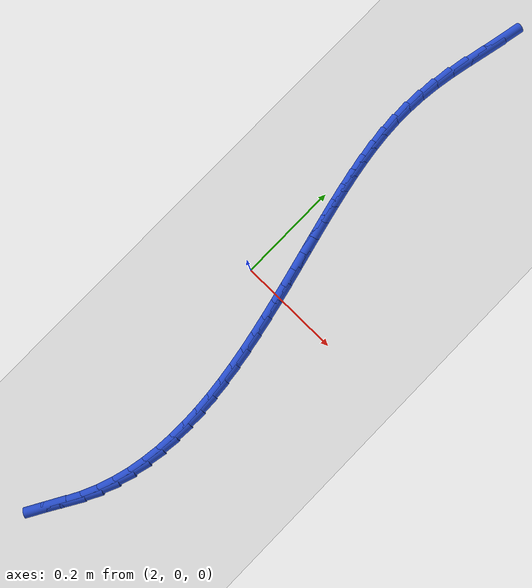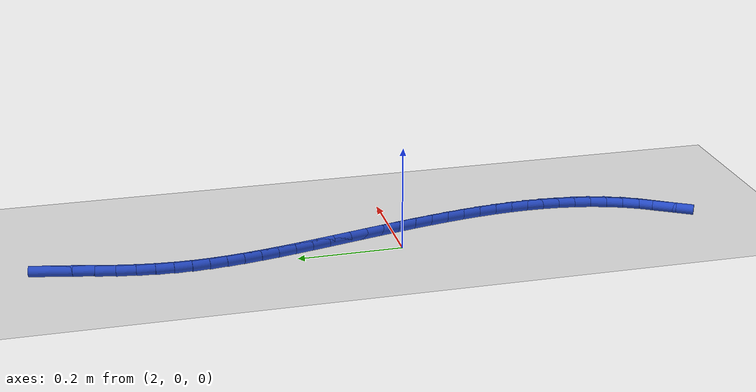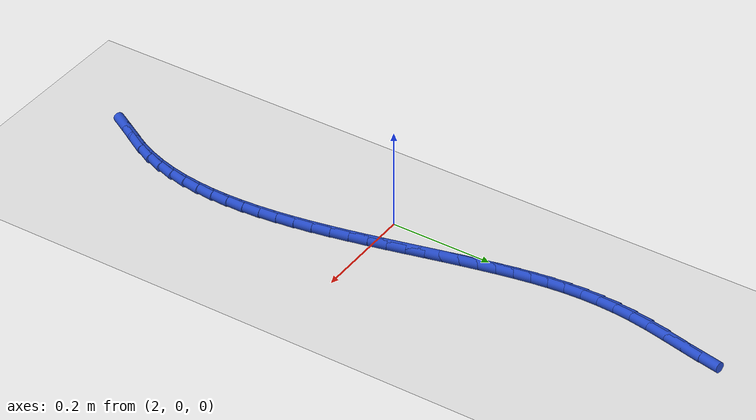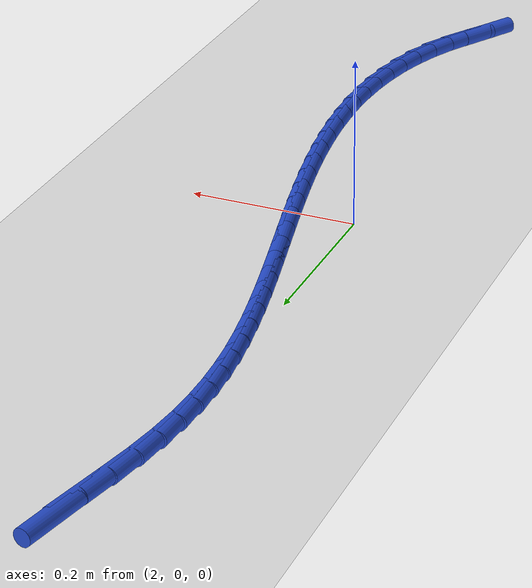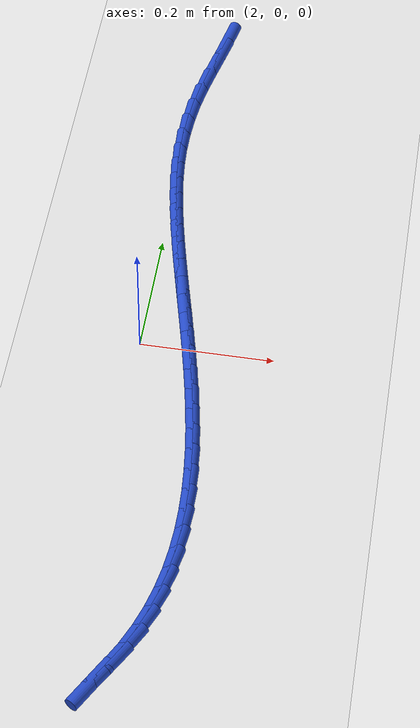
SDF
<sdf version="1.6">
 <world name="default">
  <model name="ground_plane">
   <static>1</static>
   <link name="link">
    <collision name="collision">
     <geometry><plane><normal>0 0 1</normal><size>100 100</size></plane></geometry>
     <surface><friction><ode><mu>100</mu><mu2>50</mu2></ode></friction></surface>
    </collision>
    <visual name="visual">
     <cast_shadows>0</cast_shadows>
     <geometry><plane><normal>0 0 1</normal><size>100 100</size></plane></geometry>
     <material>
      <script><uri>file://media/materials/scripts/gazebo.material</uri><name>Gazebo/WhiteGlow</name></script>
     </material>
    </visual>
   </link>
  </model>
  <model name="line">
   <link name="link_91">
    <pose>2.034192431935909 0.647462435993912 0.01 0 1.57 1.369621810823001</pose>
    <collision name="collision">
     <geometry><cylinder><radius>0.01</radius><length>0.08</length></cylinder></geometry>
    </collision>
    <visual name="visual">
     <material>
      <script><name>Gazebo/Blue</name><uri>file://media/materials/scripts/gazebo.material</uri></script>
     </material>
     <geometry><cylinder><radius>0.01</radius><length>0.08</length></cylinder></geometry>
    </visual>
   </link>
   <link name="link_92">
    <pose>2.0263084687549178 0.6088028806750904 0.01 0 1.57 1.3491373355631433</pose>
    <collision name="collision">
     <geometry><cylinder><radius>0.01</radius><length>0.08</length></cylinder></geometry>
    </collision>
    <visual name="visual">
     <material>
      <script><name>Gazebo/Blue</name><uri>file://media/materials/scripts/gazebo.material</uri></script>
     </material>
     <geometry><cylinder><radius>0.01</radius><length>0.08</length></cylinder></geometry>
    </visual>
   </link>
   <link name="link_93">
    <pose>2.017439910984816 0.5694503856099626 0.01 0 1.57 1.3611968601958053</pose>
    <collision name="collision">
     <geometry><cylinder><radius>0.01</radius><length>0.08</length></cylinder></geometry>
    </collision>
    <visual name="visual">
     <material>
      <script><name>Gazebo/Blue</name><uri>file://media/materials/scripts/gazebo.material</uri></script>
     </material>
     <geometry><cylinder><radius>0.01</radius><length>0.08</length></cylinder></geometry>
    </visual>
   </link>
   <link name="link_94">
    <pose>2.0091796039426857 0.530619239491133 0.01 0 1.57 1.4046973163205203</pose>
    <collision name="collision">
     <geometry><cylinder><radius>0.01</radius><length>0.08</length></cylinder></geometry>
    </collision>
    <visual name="visual">
     <material>
      <script><name>Gazebo/Blue</name><uri>file://media/materials/scripts/gazebo.material</uri></script>
     </material>
     <geometry><cylinder><radius>0.01</radius><length>0.08</length></cylinder></geometry>
    </visual>
   </link>
   <link name="link_95">
    <pose>2.002934327454093 0.49336593400475687 0.01 0 1.57 1.4594379807479152</pose>
    <collision name="collision">
     <geometry><cylinder><radius>0.01</radius><length>0.08</length></cylinder></geometry>
    </collision>
    <visual name="visual">
     <material>
      <script><name>Gazebo/Blue</name><uri>file://media/materials/scripts/gazebo.material</uri></script>
     </material>
     <geometry><cylinder><radius>0.01</radius><length>0.08</length></cylinder></geometry>
    </visual>
   </link>
   <link name="link_96">
    <pose>1.9989534402225504 0.45776538393752514 0.01 0 1.57 1.5150441563992707</pose>
    <collision name="collision">
     <geometry><cylinder><radius>0.01</radius><length>0.08</length></cylinder></geometry>
    </collision>
    <visual name="visual">
     <material>
      <script><name>Gazebo/Blue</name><uri>file://media/materials/scripts/gazebo.material</uri></script>
     </material>
     <geometry><cylinder><radius>0.01</radius><length>0.08</length></cylinder></geometry>
    </visual>
   </link>
   <link name="link_97">
    <pose>1.9970419636574017 0.4235156738842333 0.01 0 1.57 1.569652973487827</pose>
    <collision name="collision">
     <geometry><cylinder><radius>0.01</radius><length>0.08</length></cylinder></geometry>
    </collision>
    <visual name="visual">
     <material>
      <script><name>Gazebo/Blue</name><uri>file://media/materials/scripts/gazebo.material</uri></script>
     </material>
     <geometry><cylinder><radius>0.01</radius><length>0.08</length></cylinder></geometry>
    </visual>
   </link>
   <link name="link_98">
    <pose>1.9970040025242044 0.39031411105938885 0.01 0 1.57 -1.5203199644983347</pose>
    <collision name="collision">
     <geometry><cylinder><radius>0.01</radius><length>0.08</length></cylinder></geometry>
    </collision>
    <visual name="visual">
     <material>
      <script><name>Gazebo/Blue</name><uri>file://media/materials/scripts/gazebo.material</uri></script>
     </material>
     <geometry><cylinder><radius>0.01</radius><length>0.08</length></cylinder></geometry>
    </visual>
   </link>
   <link name="link_99">
    <pose>1.9986436615885195 0.35785800267750156 0.01 0 1.57 -1.4736009699625172</pose>
    <collision name="collision">
     <geometry><cylinder><radius>0.01</radius><length>0.08</length></cylinder></geometry>
    </collision>
    <visual name="visual">
     <material>
      <script><name>Gazebo/Blue</name><uri>file://media/materials/scripts/gazebo.material</uri></script>
     </material>
     <geometry><cylinder><radius>0.01</radius><length>0.08</length></cylinder></geometry>
    </visual>
   </link>
   <link name="link_100">
    <pose>2.001765045615904 0.3258446559530786 0.01 0 1.57 -1.4333945867012488</pose>
    <collision name="collision">
     <geometry><cylinder><radius>0.01</radius><length>0.08</length></cylinder></geometry>
    </collision>
    <visual name="visual">
     <material>
      <script><name>Gazebo/Blue</name><uri>file://media/materials/scripts/gazebo.material</uri></script>
     </material>
     <geometry><cylinder><radius>0.01</radius><length>0.08</length></cylinder></geometry>
    </visual>
   </link>
   <link name="link_101">
    <pose>2.006172259371917 0.2939713781006293 0.01 0 1.57 -1.4008579663216219</pose>
    <collision name="collision">
     <geometry><cylinder><radius>0.01</radius><length>0.08</length></cylinder></geometry>
    </collision>
    <visual name="visual">
     <material>
      <script><name>Gazebo/Blue</name><uri>file://media/materials/scripts/gazebo.material</uri></script>
     </material>
     <geometry><cylinder><radius>0.01</radius><length>0.08</length></cylinder></geometry>
    </visual>
   </link>
   <link name="link_102">
    <pose>2.0116694076221173 0.2619354763346612 0.01 0 1.57 -1.3764016894868856</pose>
    <collision name="collision">
     <geometry><cylinder><radius>0.01</radius><length>0.08</length></cylinder></geometry>
    </collision>
    <visual name="visual">
     <material>
      <script><name>Gazebo/Blue</name><uri>file://media/materials/scripts/gazebo.material</uri></script>
     </material>
     <geometry><cylinder><radius>0.01</radius><length>0.08</length></cylinder></geometry>
    </visual>
   </link>
   <link name="link_103">
    <pose>2.0180634113165494 0.22945897104831045 0.01 0 1.57 -1.3580558327134773</pose>
    <collision name="collision">
     <geometry><cylinder><radius>0.01</radius><length>0.08</length></cylinder></geometry>
    </collision>
    <visual name="visual">
     <material>
      <script><name>Gazebo/Blue</name><uri>file://media/materials/scripts/gazebo.material</uri></script>
     </material>
     <geometry><cylinder><radius>0.01</radius><length>0.08</length></cylinder></geometry>
    </visual>
   </link>
   <link name="link_104">
    <pose>2.025186285521889 0.1964840938424098 0.01 0 1.57 -1.3444044065319745</pose>
    <collision name="collision">
     <geometry><cylinder><radius>0.01</radius><length>0.08</length></cylinder></geometry>
    </collision>
    <visual name="visual">
     <material>
      <script><name>Gazebo/Blue</name><uri>file://media/materials/scripts/gazebo.material</uri></script>
     </material>
     <geometry><cylinder><radius>0.01</radius><length>0.08</length></cylinder></geometry>
    </visual>
   </link>
   <link name="link_105">
    <pose>2.032883217413384 0.1630686669950787 0.01 0 1.57 -1.3351119735946761</pose>
    <collision name="collision">
     <geometry><cylinder><radius>0.01</radius><length>0.08</length></cylinder></geometry>
    </collision>
    <visual name="visual">
     <material>
      <script><name>Gazebo/Blue</name><uri>file://media/materials/scripts/gazebo.material</uri></script>
     </material>
     <geometry><cylinder><radius>0.01</radius><length>0.08</length></cylinder></geometry>
    </visual>
   </link>
   <link name="link_106">
    <pose>2.040999510753928 0.12927153588902984 0.01 0 1.57 -1.329933006942439</pose>
    <collision name="collision">
     <geometry><cylinder><radius>0.01</radius><length>0.08</length></cylinder></geometry>
    </collision>
    <visual name="visual">
     <material>
      <script><name>Gazebo/Blue</name><uri>file://media/materials/scripts/gazebo.material</uri></script>
     </material>
     <geometry><cylinder><radius>0.01</radius><length>0.08</length></cylinder></geometry>
    </visual>
   </link>
   <link name="link_107">
    <pose>2.0493804693064144 0.0951515459069779 0.01 0 1.57 -1.328695846292243</pose>
    <collision name="collision">
     <geometry><cylinder><radius>0.01</radius><length>0.08</length></cylinder></geometry>
    </collision>
    <visual name="visual">
     <material>
      <script><name>Gazebo/Blue</name><uri>file://media/materials/scripts/gazebo.material</uri></script>
     </material>
     <geometry><cylinder><radius>0.01</radius><length>0.08</length></cylinder></geometry>
    </visual>
   </link>
   <link name="link_108">
    <pose>2.057871396833738 0.060767542431635596 0.01 0 1.57 -1.331296864348369</pose>
    <collision name="collision">
     <geometry><cylinder><radius>0.01</radius><length>0.08</length></cylinder></geometry>
    </collision>
    <visual name="visual">
     <material>
      <script><name>Gazebo/Blue</name><uri>file://media/materials/scripts/gazebo.material</uri></script>
     </material>
     <geometry><cylinder><radius>0.01</radius><length>0.08</length></cylinder></geometry>
    </visual>
   </link>
   <link name="link_109">
    <pose>2.066317597098791 0.026178370845717478 0.01 0 1.57 -1.337695643323315</pose>
    <collision name="collision">
     <geometry><cylinder><radius>0.01</radius><length>0.08</length></cylinder></geometry>
    </collision>
    <visual name="visual">
     <material>
      <script><name>Gazebo/Blue</name><uri>file://media/materials/scripts/gazebo.material</uri></script>
     </material>
     <geometry><cylinder><radius>0.01</radius><length>0.08</length></cylinder></geometry>
    </visual>
   </link>
   <link name="link_110">
    <pose>2.074564373864468 -0.008557123468063586 0.01 0 1.57 -1.3479111136011148</pose>
    <collision name="collision">
     <geometry><cylinder><radius>0.01</radius><length>0.08</length></cylinder></geometry>
    </collision>
    <visual name="visual">
     <material>
      <script><name>Gazebo/Blue</name><uri>file://media/materials/scripts/gazebo.material</uri></script>
     </material>
     <geometry><cylinder><radius>0.01</radius><length>0.08</length></cylinder></geometry>
    </visual>
   </link>
   <link name="link_111">
    <pose>2.082457030893661 -0.04338009512699312 0.01 0 1.57 -1.3620184106205921</pose>
    <collision name="collision">
     <geometry><cylinder><radius>0.01</radius><length>0.08</length></cylinder></geometry>
    </collision>
    <visual name="visual">
     <material>
      <script><name>Gazebo/Blue</name><uri>file://media/materials/scripts/gazebo.material</uri></script>
     </material>
     <geometry><cylinder><radius>0.01</radius><length>0.08</length></cylinder></geometry>
    </visual>
   </link>
   <link name="link_112">
    <pose>2.089840871949266 -0.07823169874835789 0.01 0 1.57 -1.3801460294883323</pose>
    <collision name="collision">
     <geometry><cylinder><radius>0.01</radius><length>0.08</length></cylinder></geometry>
    </collision>
    <visual name="visual">
     <material>
      <script><name>Gazebo/Blue</name><uri>file://media/materials/scripts/gazebo.material</uri></script>
     </material>
     <geometry><cylinder><radius>0.01</radius><length>0.08</length></cylinder></geometry>
    </visual>
   </link>
   <link name="link_113">
    <pose>2.0965612007941754 -0.11305308894944414 0.01 0 1.57 -1.4024726561330687</pose>
    <collision name="collision">
     <geometry><cylinder><radius>0.01</radius><length>0.08</length></cylinder></geometry>
    </collision>
    <visual name="visual">
     <material>
      <script><name>Gazebo/Blue</name><uri>file://media/materials/scripts/gazebo.material</uri></script>
     </material>
     <geometry><cylinder><radius>0.01</radius><length>0.08</length></cylinder></geometry>
    </visual>
   </link>
   <link name="link_114">
    <pose>2.1024633211912818 -0.14778542034753903 0.01 0 1.57 -1.429222797239299</pose>
    <collision name="collision">
     <geometry><cylinder><radius>0.01</radius><length>0.08</length></cylinder></geometry>
    </collision>
    <visual name="visual">
     <material>
      <script><name>Gazebo/Blue</name><uri>file://media/materials/scripts/gazebo.material</uri></script>
     </material>
     <geometry><cylinder><radius>0.01</radius><length>0.08</length></cylinder></geometry>
    </visual>
   </link>
   <link name="link_115">
    <pose>2.1073925369034807 -0.18236984755992733 0.01 0 1.57 -1.4606600000841559</pose>
    <collision name="collision">
     <geometry><cylinder><radius>0.01</radius><length>0.08</length></cylinder></geometry>
    </collision>
    <visual name="visual">
     <material>
      <script><name>Gazebo/Blue</name><uri>file://media/materials/scripts/gazebo.material</uri></script>
     </material>
     <geometry><cylinder><radius>0.01</radius><length>0.08</length></cylinder></geometry>
    </visual>
   </link>
   <link name="link_116">
    <pose>2.111194151693664 -0.21674752520389612 0.01 0 1.57 -1.4970760528010938</pose>
    <collision name="collision">
     <geometry><cylinder><radius>0.01</radius><length>0.08</length></cylinder></geometry>
    </collision>
    <visual name="visual">
     <material>
      <script><name>Gazebo/Blue</name><uri>file://media/materials/scripts/gazebo.material</uri></script>
     </material>
     <geometry><cylinder><radius>0.01</radius><length>0.08</length></cylinder></geometry>
    </visual>
   </link>
   <link name="link_117">
    <pose>2.113713469324727 -0.2508596078967317 0.01 0 1.57 -1.5387741379662292</pose>
    <collision name="collision">
     <geometry><cylinder><radius>0.01</radius><length>0.08</length></cylinder></geometry>
    </collision>
    <visual name="visual">
     <material>
      <script><name>Gazebo/Blue</name><uri>file://media/materials/scripts/gazebo.material</uri></script>
     </material>
     <geometry><cylinder><radius>0.01</radius><length>0.08</length></cylinder></geometry>
    </visual>
   </link>
   <link name="link_118">
    <pose>2.1147957935595616 -0.28464725025572124 0.01 0 1.57 1.5555490364207742</pose>
    <collision name="collision">
     <geometry><cylinder><radius>0.01</radius><length>0.08</length></cylinder></geometry>
    </collision>
    <visual name="visual">
     <material>
      <script><name>Gazebo/Blue</name><uri>file://media/materials/scripts/gazebo.material</uri></script>
     </material>
     <geometry><cylinder><radius>0.01</radius><length>0.08</length></cylinder></geometry>
    </visual>
   </link>
   <link name="link_119">
    <pose>2.1142864281610625 -0.31805160689814943 0.01 0 1.57 1.502468425331715</pose>
    <collision name="collision">
     <geometry><cylinder><radius>0.01</radius><length>0.08</length></cylinder></geometry>
    </collision>
    <visual name="visual">
     <material>
      <script><name>Gazebo/Blue</name><uri>file://media/materials/scripts/gazebo.material</uri></script>
     </material>
     <geometry><cylinder><radius>0.01</radius><length>0.08</length></cylinder></geometry>
    </visual>
   </link>
   <link name="link_120">
    <pose>2.1120306768921226 -0.35101383244130346 0.01 0 1.57 1.443434225543049</pose>
    <collision name="collision">
     <geometry><cylinder><radius>0.01</radius><length>0.08</length></cylinder></geometry>
    </collision>
    <visual name="visual">
     <material>
      <script><name>Gazebo/Blue</name><uri>file://media/materials/scripts/gazebo.material</uri></script>
     </material>
     <geometry><cylinder><radius>0.01</radius><length>0.08</length></cylinder></geometry>
    </visual>
   </link>
   <link name="link_121">
    <pose>2.1078738435156366 -0.38347508150246956 0.01 0 1.57 1.3784596778495142</pose>
    <collision name="collision">
     <geometry><cylinder><radius>0.01</radius><length>0.08</length></cylinder></geometry>
    </collision>
    <visual name="visual">
     <material>
      <script><name>Gazebo/Blue</name><uri>file://media/materials/scripts/gazebo.material</uri></script>
     </material>
     <geometry><cylinder><radius>0.01</radius><length>0.08</length></cylinder></geometry>
    </visual>
   </link>
   <link name="link_122">
    <pose>2.1016612317944965 -0.41537650869893483 0.01 0 1.57 1.3077776080550594</pose>
    <collision name="collision">
     <geometry><cylinder><radius>0.01</radius><length>0.08</length></cylinder></geometry>
    </collision>
    <visual name="visual">
     <material>
      <script><name>Gazebo/Blue</name><uri>file://media/materials/scripts/gazebo.material</uri></script>
     </material>
     <geometry><cylinder><radius>0.01</radius><length>0.08</length></cylinder></geometry>
    </visual>
   </link>
   <link name="link_123">
    <pose>2.0932381454915974 -0.4466592686479841 0.01 0 1.57 1.2318987643500732</pose>
    <collision name="collision">
     <geometry><cylinder><radius>0.01</radius><length>0.08</length></cylinder></geometry>
    </collision>
    <visual name="visual">
     <material>
      <script><name>Gazebo/Blue</name><uri>file://media/materials/scripts/gazebo.material</uri></script>
     </material>
     <geometry><cylinder><radius>0.01</radius><length>0.08</length></cylinder></geometry>
    </visual>
   </link>
   <link name="link_124">
    <pose>2.0824498883698324 -0.47726451596690456 0.01 0 1.57 1.1516480475794304</pose>
    <collision name="collision">
     <geometry><cylinder><radius>0.01</radius><length>0.08</length></cylinder></geometry>
    </collision>
    <visual name="visual">
     <material>
      <script><name>Gazebo/Blue</name><uri>file://media/materials/scripts/gazebo.material</uri></script>
     </material>
     <geometry><cylinder><radius>0.01</radius><length>0.08</length></cylinder></geometry>
    </visual>
   </link>
   <link name="link_125">
    <pose>2.0691417641920946 -0.5071334052729823 0.01 0 1.57 1.071837322153375</pose>
    <collision name="collision">
     <geometry><cylinder><radius>0.01</radius><length>0.08</length></cylinder></geometry>
    </collision>
    <visual name="visual">
     <material>
      <script><name>Gazebo/Blue</name><uri>file://media/materials/scripts/gazebo.material</uri></script>
     </material>
     <geometry><cylinder><radius>0.01</radius><length>0.08</length></cylinder></geometry>
    </visual>
   </link>
   <link name="link_126">
    <pose>2.0532754653835883 -0.5362484668009402 0.01 0 1.57 1.0313870826756113</pose>
    <collision name="collision">
     <geometry><cylinder><radius>0.01</radius><length>0.08</length></cylinder></geometry>
    </collision>
    <visual name="visual">
     <material>
      <script><name>Gazebo/Blue</name><uri>file://media/materials/scripts/gazebo.material</uri></script>
     </material>
     <geometry><cylinder><radius>0.01</radius><length>0.08</length></cylinder></geometry>
    </visual>
   </link>
   <link name="link_127">
    <pose>2.036045724272482 -0.5650305706228579 0.01 0 1.57 1.0514274986385206</pose>
    <collision name="collision">
     <geometry><cylinder><radius>0.01</radius><length>0.08</length></cylinder></geometry>
    </collision>
    <visual name="visual">
     <material>
      <script><name>Gazebo/Blue</name><uri>file://media/materials/scripts/gazebo.material</uri></script>
     </material>
     <geometry><cylinder><radius>0.01</radius><length>0.08</length></cylinder></geometry>
    </visual>
   </link>
  </model>
 </world>
</sdf>
